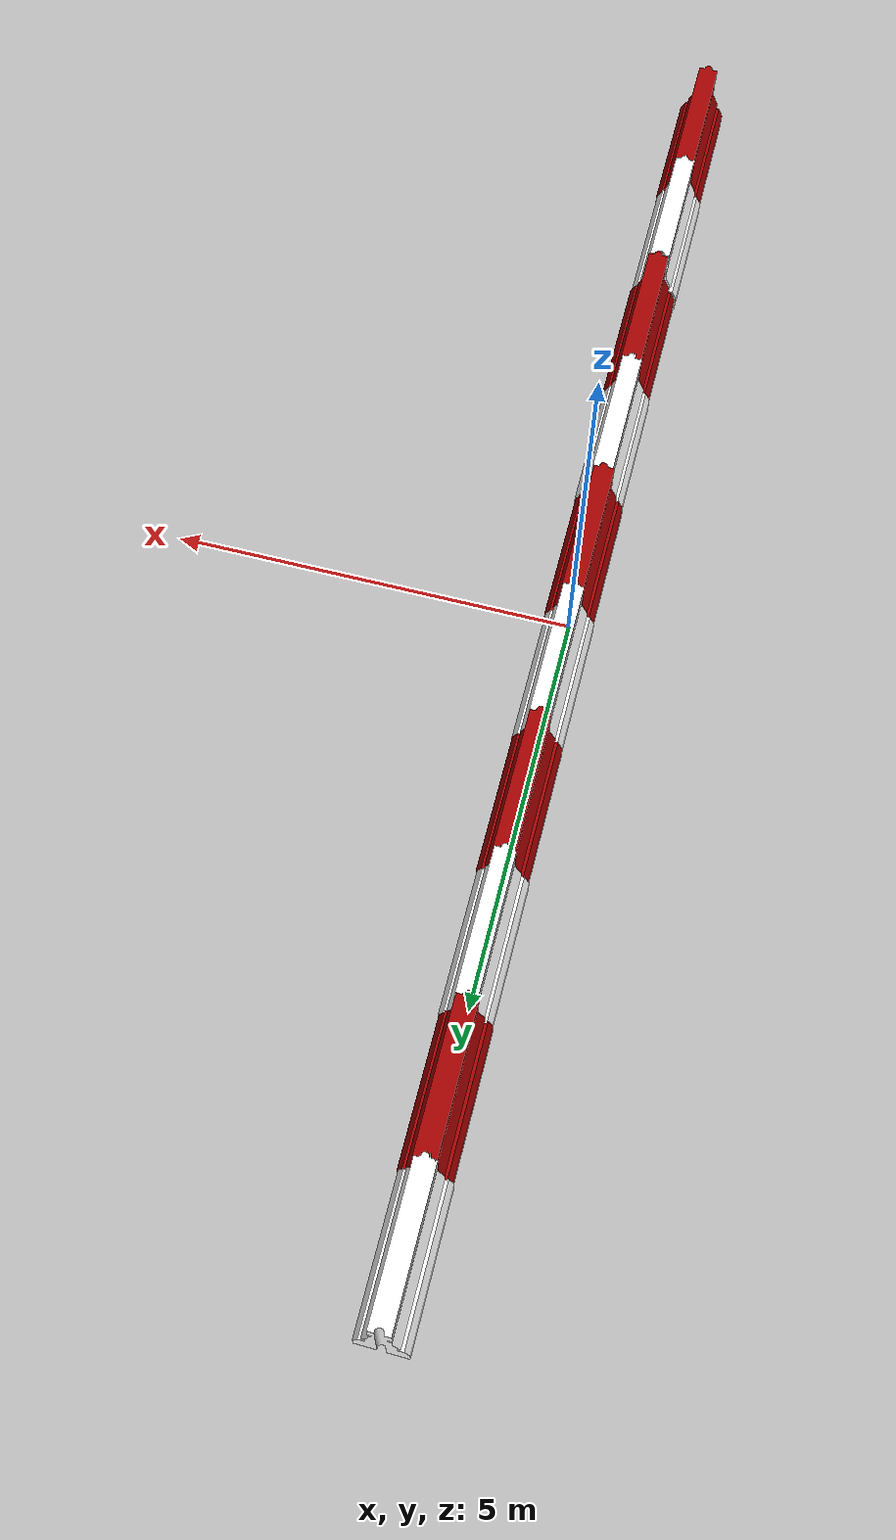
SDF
<?xml version='1.0'?>
<sdf version='1.6'>
  <model name='10_barrier'>
    <model name='redwhite_barrier'>
      <model name='2barrier_red'>
        <link name='link'>
          <self_collide>0</self_collide>
          <enable_wind>0</enable_wind>
          <kinematic>0</kinematic>
          <pose frame=''>0 0 0 0 -0 0</pose>
          <gravity>1</gravity>
          <inertial>
            <mass>1</mass>
            <pose frame=''>0 0 0 0 -0 0</pose>
            <inertia>
              <ixx>1</ixx>
              <ixy>0</ixy>
              <ixz>0</ixz>
              <iyy>1</iyy>
              <iyz>0</iyz>
              <izz>1</izz>
            </inertia>
          </inertial>
          <visual name='visual'>
            <geometry>
              <mesh>
                <uri>model://drc_practice_white_jersey_barrier/meshes/jersey_barrier.dae</uri>
              </mesh>
            </geometry>
            <pose frame=''>0 0 0 0 -0 0</pose>
            <transparency>0</transparency>
            <cast_shadows>1</cast_shadows>
            <material>
              <script>
                <name>ModelPreview_1::link::visual_MATERIAL_</name>
                <uri>__default__</uri>
              </script>
              <ambient>0.4 0.4 0.4 1</ambient>
              <shader type='vertex'>
                <normal_map>__default__</normal_map>
              </shader>
              <diffuse>0.643 0 0 1</diffuse>
              <specular>0.933 0.933 0.925 1</specular>
              <emissive>0.643 0 0 1</emissive>
            </material>
          </visual>
          <collision name='collision'>
            <laser_retro>0</laser_retro>
            <max_contacts>10</max_contacts>
            <pose frame=''>0 0 0 0 -0 0</pose>
            <geometry>
              <mesh>
                <uri>/home/beyz/.gazebo/gazebo_models/drc_practice_white_jersey_barrier/meshes/jersey_barrier.dae</uri>
                <scale>1 1 1</scale>
              </mesh>
            </geometry>
            <surface>
              <friction>
                <ode>
                  <mu>1</mu>
                  <mu2>1</mu2>
                  <fdir1>0 0 0</fdir1>
                  <slip1>0</slip1>
                  <slip2>0</slip2>
                </ode>
                <torsional>
                  <coefficient>1</coefficient>
                  <patch_radius>0</patch_radius>
                  <surface_radius>0</surface_radius>
                  <use_patch_radius>1</use_patch_radius>
                  <ode>
                    <slip>0</slip>
                  </ode>
                </torsional>
              </friction>
              <bounce>
                <restitution_coefficient>0</restitution_coefficient>
                <threshold>1e+06</threshold>
              </bounce>
              <contact>
                <collide_without_contact>0</collide_without_contact>
                <collide_without_contact_bitmask>1</collide_without_contact_bitmask>
                <collide_bitmask>1</collide_bitmask>
                <ode>
                  <soft_cfm>0</soft_cfm>
                  <soft_erp>0.2</soft_erp>
                  <kp>1e+13</kp>
                  <kd>1</kd>
                  <max_vel>0.01</max_vel>
                  <min_depth>0</min_depth>
                </ode>
                <bullet>
                  <split_impulse>1</split_impulse>
                  <split_impulse_penetration_threshold>-0.01</split_impulse_penetration_threshold>
                  <soft_cfm>0</soft_cfm>
                  <soft_erp>0.2</soft_erp>
                  <kp>1e+13</kp>
                  <kd>1</kd>
                </bullet>
              </contact>
            </surface>
          </collision>
        </link>
        <static>1</static>
        <allow_auto_disable>1</allow_auto_disable>
        <pose frame=''>0.002119 -0.86074 0 0 -0 0</pose>
      </model>
      <model name='drc_practice_white_jersey_barrier'>
        <static>1</static>
        <link name='link'>
          <visual name='visual'>
            <geometry>
              <mesh>
                <uri>model://drc_practice_white_jersey_barrier/meshes/jersey_barrier.dae</uri>
              </mesh>
            </geometry>
          </visual>
          <collision name='collision'>
            <geometry>
              <mesh>
                <uri>model://drc_practice_white_jersey_barrier/meshes/jersey_barrier.dae</uri>
              </mesh>
            </geometry>
            <max_contacts>10</max_contacts>
            <surface>
              <contact>
                <ode/>
              </contact>
              <bounce/>
              <friction>
                <torsional>
                  <ode/>
                </torsional>
                <ode/>
              </friction>
            </surface>
          </collision>
          <self_collide>0</self_collide>
          <enable_wind>0</enable_wind>
          <kinematic>0</kinematic>
        </link>
        <pose frame=''>-0.00212 0.860737 0 0 -0 0</pose>
      </model>
      <static>0</static>
      <allow_auto_disable>1</allow_auto_disable>
      <pose frame=''>-0.007812 6.89216 0 0 -0 0</pose>
    </model>
    <model name='redwhite_barrier_0'>
      <model name='2barrier_red'>
        <link name='link'>
          <self_collide>0</self_collide>
          <enable_wind>0</enable_wind>
          <kinematic>0</kinematic>
          <pose frame=''>0 0 0 0 -0 0</pose>
          <gravity>1</gravity>
          <inertial>
            <mass>1</mass>
            <pose frame=''>0 0 0 0 -0 0</pose>
            <inertia>
              <ixx>1</ixx>
              <ixy>0</ixy>
              <ixz>0</ixz>
              <iyy>1</iyy>
              <iyz>0</iyz>
              <izz>1</izz>
            </inertia>
          </inertial>
          <visual name='visual'>
            <geometry>
              <mesh>
                <uri>model://drc_practice_white_jersey_barrier/meshes/jersey_barrier.dae</uri>
              </mesh>
            </geometry>
            <pose frame=''>0 0 0 0 -0 0</pose>
            <transparency>0</transparency>
            <cast_shadows>1</cast_shadows>
            <material>
              <script>
                <name>ModelPreview_1::link::visual_MATERIAL_</name>
                <uri>__default__</uri>
              </script>
              <ambient>0.4 0.4 0.4 1</ambient>
              <shader type='vertex'>
                <normal_map>__default__</normal_map>
              </shader>
              <diffuse>0.643 0 0 1</diffuse>
              <specular>0.933 0.933 0.925 1</specular>
              <emissive>0.643 0 0 1</emissive>
            </material>
          </visual>
          <collision name='collision'>
            <laser_retro>0</laser_retro>
            <max_contacts>10</max_contacts>
            <pose frame=''>0 0 0 0 -0 0</pose>
            <geometry>
              <mesh>
                <uri>/home/beyz/.gazebo/gazebo_models/drc_practice_white_jersey_barrier/meshes/jersey_barrier.dae</uri>
                <scale>1 1 1</scale>
              </mesh>
            </geometry>
            <surface>
              <friction>
                <ode>
                  <mu>1</mu>
                  <mu2>1</mu2>
                  <fdir1>0 0 0</fdir1>
                  <slip1>0</slip1>
                  <slip2>0</slip2>
                </ode>
                <torsional>
                  <coefficient>1</coefficient>
                  <patch_radius>0</patch_radius>
                  <surface_radius>0</surface_radius>
                  <use_patch_radius>1</use_patch_radius>
                  <ode>
                    <slip>0</slip>
                  </ode>
                </torsional>
              </friction>
              <bounce>
                <restitution_coefficient>0</restitution_coefficient>
                <threshold>1e+06</threshold>
              </bounce>
              <contact>
                <collide_without_contact>0</collide_without_contact>
                <collide_without_contact_bitmask>1</collide_without_contact_bitmask>
                <collide_bitmask>1</collide_bitmask>
                <ode>
                  <soft_cfm>0</soft_cfm>
                  <soft_erp>0.2</soft_erp>
                  <kp>1e+13</kp>
                  <kd>1</kd>
                  <max_vel>0.01</max_vel>
                  <min_depth>0</min_depth>
                </ode>
                <bullet>
                  <split_impulse>1</split_impulse>
                  <split_impulse_penetration_threshold>-0.01</split_impulse_penetration_threshold>
                  <soft_cfm>0</soft_cfm>
                  <soft_erp>0.2</soft_erp>
                  <kp>1e+13</kp>
                  <kd>1</kd>
                </bullet>
              </contact>
            </surface>
          </collision>
        </link>
        <static>1</static>
        <allow_auto_disable>1</allow_auto_disable>
        <pose frame=''>0.002119 -0.86074 0 0 -0 0</pose>
      </model>
      <model name='drc_practice_white_jersey_barrier'>
        <static>1</static>
        <link name='link'>
          <visual name='visual'>
            <geometry>
              <mesh>
                <uri>model://drc_practice_white_jersey_barrier/meshes/jersey_barrier.dae</uri>
              </mesh>
            </geometry>
          </visual>
          <collision name='collision'>
            <geometry>
              <mesh>
                <uri>model://drc_practice_white_jersey_barrier/meshes/jersey_barrier.dae</uri>
              </mesh>
            </geometry>
            <max_contacts>10</max_contacts>
            <surface>
              <contact>
                <ode/>
              </contact>
              <bounce/>
              <friction>
                <torsional>
                  <ode/>
                </torsional>
                <ode/>
              </friction>
            </surface>
          </collision>
          <self_collide>0</self_collide>
          <enable_wind>0</enable_wind>
          <kinematic>0</kinematic>
        </link>
        <pose frame=''>-0.00212 0.860737 0 0 -0 0</pose>
      </model>
      <static>0</static>
      <allow_auto_disable>1</allow_auto_disable>
      <pose frame=''>-0.000137 3.46077 0 0 -0 0</pose>
    </model>
    <model name='redwhite_barrier_1'>
      <model name='2barrier_red'>
        <link name='link'>
          <self_collide>0</self_collide>
          <enable_wind>0</enable_wind>
          <kinematic>0</kinematic>
          <pose frame=''>0 0 0 0 -0 0</pose>
          <gravity>1</gravity>
          <inertial>
            <mass>1</mass>
            <pose frame=''>0 0 0 0 -0 0</pose>
            <inertia>
              <ixx>1</ixx>
              <ixy>0</ixy>
              <ixz>0</ixz>
              <iyy>1</iyy>
              <iyz>0</iyz>
              <izz>1</izz>
            </inertia>
          </inertial>
          <visual name='visual'>
            <geometry>
              <mesh>
                <uri>model://drc_practice_white_jersey_barrier/meshes/jersey_barrier.dae</uri>
              </mesh>
            </geometry>
            <pose frame=''>0 0 0 0 -0 0</pose>
            <transparency>0</transparency>
            <cast_shadows>1</cast_shadows>
            <material>
              <script>
                <name>ModelPreview_1::link::visual_MATERIAL_</name>
                <uri>__default__</uri>
              </script>
              <ambient>0.4 0.4 0.4 1</ambient>
              <shader type='vertex'>
                <normal_map>__default__</normal_map>
              </shader>
              <diffuse>0.643 0 0 1</diffuse>
              <specular>0.933 0.933 0.925 1</specular>
              <emissive>0.643 0 0 1</emissive>
            </material>
          </visual>
          <collision name='collision'>
            <laser_retro>0</laser_retro>
            <max_contacts>10</max_contacts>
            <pose frame=''>0 0 0 0 -0 0</pose>
            <geometry>
              <mesh>
                <uri>/home/beyz/.gazebo/gazebo_models/drc_practice_white_jersey_barrier/meshes/jersey_barrier.dae</uri>
                <scale>1 1 1</scale>
              </mesh>
            </geometry>
            <surface>
              <friction>
                <ode>
                  <mu>1</mu>
                  <mu2>1</mu2>
                  <fdir1>0 0 0</fdir1>
                  <slip1>0</slip1>
                  <slip2>0</slip2>
                </ode>
                <torsional>
                  <coefficient>1</coefficient>
                  <patch_radius>0</patch_radius>
                  <surface_radius>0</surface_radius>
                  <use_patch_radius>1</use_patch_radius>
                  <ode>
                    <slip>0</slip>
                  </ode>
                </torsional>
              </friction>
              <bounce>
                <restitution_coefficient>0</restitution_coefficient>
                <threshold>1e+06</threshold>
              </bounce>
              <contact>
                <collide_without_contact>0</collide_without_contact>
                <collide_without_contact_bitmask>1</collide_without_contact_bitmask>
                <collide_bitmask>1</collide_bitmask>
                <ode>
                  <soft_cfm>0</soft_cfm>
                  <soft_erp>0.2</soft_erp>
                  <kp>1e+13</kp>
                  <kd>1</kd>
                  <max_vel>0.01</max_vel>
                  <min_depth>0</min_depth>
                </ode>
                <bullet>
                  <split_impulse>1</split_impulse>
                  <split_impulse_penetration_threshold>-0.01</split_impulse_penetration_threshold>
                  <soft_cfm>0</soft_cfm>
                  <soft_erp>0.2</soft_erp>
                  <kp>1e+13</kp>
                  <kd>1</kd>
                </bullet>
              </contact>
            </surface>
          </collision>
        </link>
        <static>1</static>
        <allow_auto_disable>1</allow_auto_disable>
        <pose frame=''>0.002119 -0.86074 0 0 -0 0</pose>
      </model>
      <model name='drc_practice_white_jersey_barrier'>
        <static>1</static>
        <link name='link'>
          <visual name='visual'>
            <geometry>
              <mesh>
                <uri>model://drc_practice_white_jersey_barrier/meshes/jersey_barrier.dae</uri>
              </mesh>
            </geometry>
          </visual>
          <collision name='collision'>
            <geometry>
              <mesh>
                <uri>model://drc_practice_white_jersey_barrier/meshes/jersey_barrier.dae</uri>
              </mesh>
            </geometry>
            <max_contacts>10</max_contacts>
            <surface>
              <contact>
                <ode/>
              </contact>
              <bounce/>
              <friction>
                <torsional>
                  <ode/>
                </torsional>
                <ode/>
              </friction>
            </surface>
          </collision>
          <self_collide>0</self_collide>
          <enable_wind>0</enable_wind>
          <kinematic>0</kinematic>
        </link>
        <pose frame=''>-0.00212 0.860737 0 0 -0 0</pose>
      </model>
      <static>0</static>
      <allow_auto_disable>1</allow_auto_disable>
      <pose frame=''>0.001784 0.007151 0 0 -0 0</pose>
    </model>
    <model name='redwhite_barrier_2'>
      <model name='2barrier_red'>
        <link name='link'>
          <self_collide>0</self_collide>
          <enable_wind>0</enable_wind>
          <kinematic>0</kinematic>
          <pose frame=''>0 0 0 0 -0 0</pose>
          <gravity>1</gravity>
          <inertial>
            <mass>1</mass>
            <pose frame=''>0 0 0 0 -0 0</pose>
            <inertia>
              <ixx>1</ixx>
              <ixy>0</ixy>
              <ixz>0</ixz>
              <iyy>1</iyy>
              <iyz>0</iyz>
              <izz>1</izz>
            </inertia>
          </inertial>
          <visual name='visual'>
            <geometry>
              <mesh>
                <uri>model://drc_practice_white_jersey_barrier/meshes/jersey_barrier.dae</uri>
              </mesh>
            </geometry>
            <pose frame=''>0 0 0 0 -0 0</pose>
            <transparency>0</transparency>
            <cast_shadows>1</cast_shadows>
            <material>
              <script>
                <name>ModelPreview_1::link::visual_MATERIAL_</name>
                <uri>__default__</uri>
              </script>
              <ambient>0.4 0.4 0.4 1</ambient>
              <shader type='vertex'>
                <normal_map>__default__</normal_map>
              </shader>
              <diffuse>0.643 0 0 1</diffuse>
              <specular>0.933 0.933 0.925 1</specular>
              <emissive>0.643 0 0 1</emissive>
            </material>
          </visual>
          <collision name='collision'>
            <laser_retro>0</laser_retro>
            <max_contacts>10</max_contacts>
            <pose frame=''>0 0 0 0 -0 0</pose>
            <geometry>
              <mesh>
                <uri>/home/beyz/.gazebo/gazebo_models/drc_practice_white_jersey_barrier/meshes/jersey_barrier.dae</uri>
                <scale>1 1 1</scale>
              </mesh>
            </geometry>
            <surface>
              <friction>
                <ode>
                  <mu>1</mu>
                  <mu2>1</mu2>
                  <fdir1>0 0 0</fdir1>
                  <slip1>0</slip1>
                  <slip2>0</slip2>
                </ode>
                <torsional>
                  <coefficient>1</coefficient>
                  <patch_radius>0</patch_radius>
                  <surface_radius>0</surface_radius>
                  <use_patch_radius>1</use_patch_radius>
                  <ode>
                    <slip>0</slip>
                  </ode>
                </torsional>
              </friction>
              <bounce>
                <restitution_coefficient>0</restitution_coefficient>
                <threshold>1e+06</threshold>
              </bounce>
              <contact>
                <collide_without_contact>0</collide_without_contact>
                <collide_without_contact_bitmask>1</collide_without_contact_bitmask>
                <collide_bitmask>1</collide_bitmask>
                <ode>
                  <soft_cfm>0</soft_cfm>
                  <soft_erp>0.2</soft_erp>
                  <kp>1e+13</kp>
                  <kd>1</kd>
                  <max_vel>0.01</max_vel>
                  <min_depth>0</min_depth>
                </ode>
                <bullet>
                  <split_impulse>1</split_impulse>
                  <split_impulse_penetration_threshold>-0.01</split_impulse_penetration_threshold>
                  <soft_cfm>0</soft_cfm>
                  <soft_erp>0.2</soft_erp>
                  <kp>1e+13</kp>
                  <kd>1</kd>
                </bullet>
              </contact>
            </surface>
          </collision>
        </link>
        <static>1</static>
        <allow_auto_disable>1</allow_auto_disable>
        <pose frame=''>0.002119 -0.86074 0 0 -0 0</pose>
      </model>
      <model name='drc_practice_white_jersey_barrier'>
        <static>1</static>
        <link name='link'>
          <visual name='visual'>
            <geometry>
              <mesh>
                <uri>model://drc_practice_white_jersey_barrier/meshes/jersey_barrier.dae</uri>
              </mesh>
            </geometry>
          </visual>
          <collision name='collision'>
            <geometry>
              <mesh>
                <uri>model://drc_practice_white_jersey_barrier/meshes/jersey_barrier.dae</uri>
              </mesh>
            </geometry>
            <max_contacts>10</max_contacts>
            <surface>
              <contact>
                <ode/>
              </contact>
              <bounce/>
              <friction>
                <torsional>
                  <ode/>
                </torsional>
                <ode/>
              </friction>
            </surface>
          </collision>
          <self_collide>0</self_collide>
          <enable_wind>0</enable_wind>
          <kinematic>0</kinematic>
        </link>
        <pose frame=''>-0.00212 0.860737 0 0 -0 0</pose>
      </model>
      <static>0</static>
      <allow_auto_disable>1</allow_auto_disable>
      <pose frame=''>0.012333 -3.44246 0 0 -0 0</pose>
    </model>
    <model name='redwhite_barrier_3'>
      <model name='2barrier_red'>
        <link name='link'>
          <self_collide>0</self_collide>
          <enable_wind>0</enable_wind>
          <kinematic>0</kinematic>
          <pose frame=''>0 0 0 0 -0 0</pose>
          <gravity>1</gravity>
          <inertial>
            <mass>1</mass>
            <pose frame=''>0 0 0 0 -0 0</pose>
            <inertia>
              <ixx>1</ixx>
              <ixy>0</ixy>
              <ixz>0</ixz>
              <iyy>1</iyy>
              <iyz>0</iyz>
              <izz>1</izz>
            </inertia>
          </inertial>
          <visual name='visual'>
            <geometry>
              <mesh>
                <uri>model://drc_practice_white_jersey_barrier/meshes/jersey_barrier.dae</uri>
              </mesh>
            </geometry>
            <pose frame=''>0 0 0 0 -0 0</pose>
            <transparency>0</transparency>
            <cast_shadows>1</cast_shadows>
            <material>
              <script>
                <name>ModelPreview_1::link::visual_MATERIAL_</name>
                <uri>__default__</uri>
              </script>
              <ambient>0.4 0.4 0.4 1</ambient>
              <shader type='vertex'>
                <normal_map>__default__</normal_map>
              </shader>
              <diffuse>0.643 0 0 1</diffuse>
              <specular>0.933 0.933 0.925 1</specular>
              <emissive>0.643 0 0 1</emissive>
            </material>
          </visual>
          <collision name='collision'>
            <laser_retro>0</laser_retro>
            <max_contacts>10</max_contacts>
            <pose frame=''>0 0 0 0 -0 0</pose>
            <geometry>
              <mesh>
                <uri>/home/beyz/.gazebo/gazebo_models/drc_practice_white_jersey_barrier/meshes/jersey_barrier.dae</uri>
                <scale>1 1 1</scale>
              </mesh>
            </geometry>
            <surface>
              <friction>
                <ode>
                  <mu>1</mu>
                  <mu2>1</mu2>
                  <fdir1>0 0 0</fdir1>
                  <slip1>0</slip1>
                  <slip2>0</slip2>
                </ode>
                <torsional>
                  <coefficient>1</coefficient>
                  <patch_radius>0</patch_radius>
                  <surface_radius>0</surface_radius>
                  <use_patch_radius>1</use_patch_radius>
                  <ode>
                    <slip>0</slip>
                  </ode>
                </torsional>
              </friction>
              <bounce>
                <restitution_coefficient>0</restitution_coefficient>
                <threshold>1e+06</threshold>
              </bounce>
              <contact>
                <collide_without_contact>0</collide_without_contact>
                <collide_without_contact_bitmask>1</collide_without_contact_bitmask>
                <collide_bitmask>1</collide_bitmask>
                <ode>
                  <soft_cfm>0</soft_cfm>
                  <soft_erp>0.2</soft_erp>
                  <kp>1e+13</kp>
                  <kd>1</kd>
                  <max_vel>0.01</max_vel>
                  <min_depth>0</min_depth>
                </ode>
                <bullet>
                  <split_impulse>1</split_impulse>
                  <split_impulse_penetration_threshold>-0.01</split_impulse_penetration_threshold>
                  <soft_cfm>0</soft_cfm>
                  <soft_erp>0.2</soft_erp>
                  <kp>1e+13</kp>
                  <kd>1</kd>
                </bullet>
              </contact>
            </surface>
          </collision>
        </link>
        <static>1</static>
        <allow_auto_disable>1</allow_auto_disable>
        <pose frame=''>0.002119 -0.86074 0 0 -0 0</pose>
      </model>
      <model name='drc_practice_white_jersey_barrier'>
        <static>1</static>
        <link name='link'>
          <visual name='visual'>
            <geometry>
              <mesh>
                <uri>model://drc_practice_white_jersey_barrier/meshes/jersey_barrier.dae</uri>
              </mesh>
            </geometry>
          </visual>
          <collision name='collision'>
            <geometry>
              <mesh>
                <uri>model://drc_practice_white_jersey_barrier/meshes/jersey_barrier.dae</uri>
              </mesh>
            </geometry>
            <max_contacts>10</max_contacts>
            <surface>
              <contact>
                <ode/>
              </contact>
              <bounce/>
              <friction>
                <torsional>
                  <ode/>
                </torsional>
                <ode/>
              </friction>
            </surface>
          </collision>
          <self_collide>0</self_collide>
          <enable_wind>0</enable_wind>
          <kinematic>0</kinematic>
        </link>
        <pose frame=''>-0.00212 0.860737 0 0 -0 0</pose>
      </model>
      <static>0</static>
      <allow_auto_disable>1</allow_auto_disable>
      <pose frame=''>-0.006175 -6.91763 0 0 -0 0</pose>
    </model>
    <static>0</static>
    <allow_auto_disable>1</allow_auto_disable>
  </model>
</sdf>
